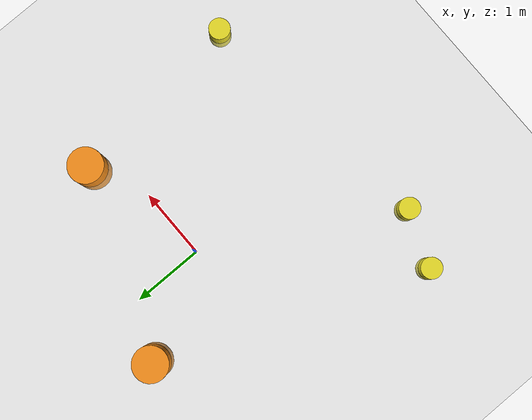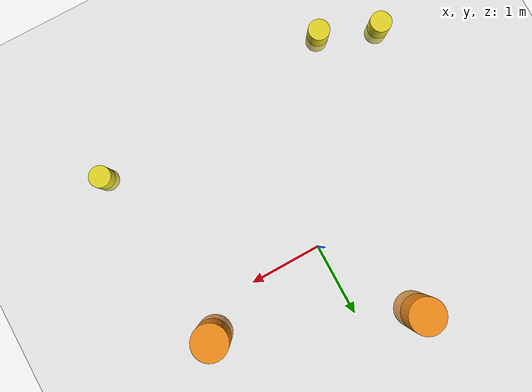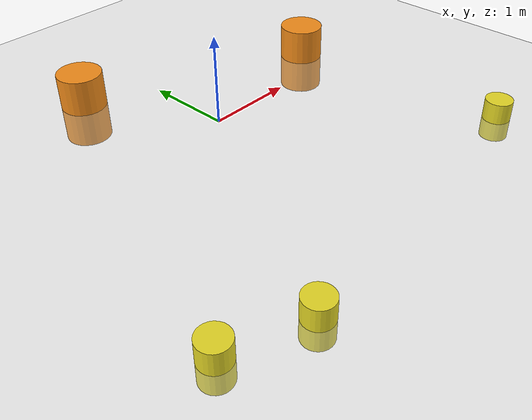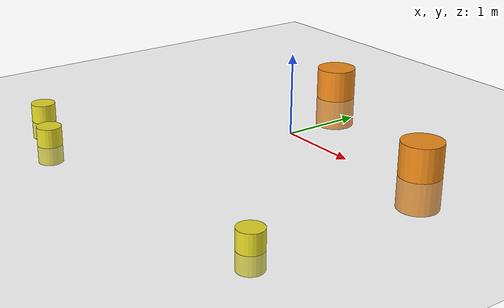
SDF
<?xml version="1.0" ?>
<sdf version="1.7">
  <world name="default">

    <!-- Global lighting -->
    <light name='sun' type='directional'>
      <cast_shadows>true</cast_shadows>
      <pose>0 0 10 0 0 0</pose>
      <diffuse>0.8 0.8 0.8 1</diffuse>
      <specular>0.2 0.2 0.2 1</specular>
      <attenuation>
        <range>1000</range>
        <constant>0.9</constant>
        <linear>0.01</linear>
        <quadratic>0.001</quadratic>
      </attenuation>
      <direction>-0.5 0.1 -0.9</direction>
    </light>

    <!-- Ground plane -->
    <model name='ground_plane'>
      <static>true</static>
      <link name='link'>
        <collision name='collision'>
          <geometry>
            <plane>
              <normal>0 0 1</normal>
              <size>100 100</size>
            </plane>
          </geometry>
          <surface>
            <friction>
              <ode>
                <mu>100</mu>
                <mu2>50</mu2>
              </ode>
            </friction>
          </surface>
        </collision>
        <visual name='visual'>
          <cast_shadows>false</cast_shadows>
          <geometry>
            <plane>
              <normal>0 0 1</normal>
              <size>100 100</size>
            </plane>
          </geometry>
          <material>
            <script>
              <uri>file://media/materials/scripts/gazebo.material</uri>
              <name>Gazebo/Grey</name>
            </script>
          </material>
        </visual>
      </link>
    </model>

    <!-- Construction Barrel 1 -->
    <model name='barrel_1'>
      <pose>-0.756 1.392 0 0 0 0</pose>
      <static>false</static>
      <link name='link'>
        <inertial>
          <mass>50</mass>
          <inertia>
            <ixx>5.12</ixx>
            <iyy>5.12</iyy>
            <izz>2.5</izz>
            <ixy>0</ixy>
            <ixz>0</ixz>
            <iyz>0</iyz>
          </inertia>
        </inertial>
        <collision name='collision'>
          <geometry>
            <cylinder>
              <radius>0.25</radius>
              <length>0.8</length>
            </cylinder>
          </geometry>
        </collision>
        <visual name='visual'>
          <geometry>
            <cylinder>
              <radius>0.25</radius>
              <length>0.8</length>
            </cylinder>
          </geometry>
          <material>
            <script>
              <uri>file://media/materials/scripts/gazebo.material</uri>
              <name>Gazebo/Orange</name>
            </script>
          </material>
        </visual>
      </link>
    </model>

    <!-- Construction Barrel 2 -->
    <model name='barrel_2'>
      <pose>1.800 0.377 0 0 0 0</pose>
      <static>false</static>
      <link name='link'>
        <inertial>
          <mass>50</mass>
          <inertia>
            <ixx>5.12</ixx>
            <iyy>5.12</iyy>
            <izz>2.5</izz>
            <ixy>0</ixy>
            <ixz>0</ixz>
            <iyz>0</iyz>
          </inertia>
        </inertial>
        <collision name='collision'>
          <geometry>
            <cylinder>
              <radius>0.25</radius>
              <length>0.8</length>
            </cylinder>
          </geometry>
        </collision>
        <visual name='visual'>
          <geometry>
            <cylinder>
              <radius>0.25</radius>
              <length>0.8</length>
            </cylinder>
          </geometry>
          <material>
            <script>
              <uri>file://media/materials/scripts/gazebo.material</uri>
              <name>Gazebo/Orange</name>
            </script>
          </material>
        </visual>
      </link>
    </model>

    <!-- Construction Cone 1 -->
    <model name='cone_1'>
      <pose>-2.197 -2.250 0 0 0 0</pose>
      <static>false</static>
      <link name='link'>
        <inertial>
          <mass>5</mass>
          <inertia>
            <ixx>0.5</ixx>
            <iyy>0.5</iyy>
            <izz>0.5</izz>
            <ixy>0</ixy>
            <ixz>0</ixz>
            <iyz>0</iyz>
          </inertia>
        </inertial>
        <collision name='collision'>
          <geometry>
            <cylinder>
              <radius>0.15</radius>
              <length>0.45</length>
            </cylinder>
          </geometry>
        </collision>
        <visual name='visual'>
          <geometry>
            <cylinder>
              <radius>0.15</radius>
              <length>0.45</length>
            </cylinder>
          </geometry>
          <material>
            <script>
              <uri>file://media/materials/scripts/gazebo.material</uri>
              <name>Gazebo/Yellow</name>
            </script>
          </material>
        </visual>
      </link>
    </model>

    <!-- Construction Cone 2 -->
    <model name='cone_2'>
      <pose>-1.405 -2.551 0 0 0 0</pose>
      <static>false</static>
      <link name='link'>
        <inertial>
          <mass>5</mass>
          <inertia>
            <ixx>0.5</ixx>
            <iyy>0.5</iyy>
            <izz>0.5</izz>
            <ixy>0</ixy>
            <ixz>0</ixz>
            <iyz>0</iyz>
          </inertia>
        </inertial>
        <collision name='collision'>
          <geometry>
            <cylinder>
              <radius>0.15</radius>
              <length>0.45</length>
            </cylinder>
          </geometry>
        </collision>
        <visual name='visual'>
          <geometry>
            <cylinder>
              <radius>0.15</radius>
              <length>0.45</length>
            </cylinder>
          </geometry>
          <material>
            <script>
              <uri>file://media/materials/scripts/gazebo.material</uri>
              <name>Gazebo/Yellow</name>
            </script>
          </material>
        </visual>
      </link>
    </model>

    <!-- Construction Cone 3 -->
    <model name='cone_3'>
      <pose>2.097 -2.182 0 0 0 0</pose>
      <static>false</static>
      <link name='link'>
        <inertial>
          <mass>5</mass>
          <inertia>
            <ixx>0.5</ixx>
            <iyy>0.5</iyy>
            <izz>0.5</izz>
            <ixy>0</ixy>
            <ixz>0</ixz>
            <iyz>0</iyz>
          </inertia>
        </inertial>
        <collision name='collision'>
          <geometry>
            <cylinder>
              <radius>0.15</radius>
              <length>0.45</length>
            </cylinder>
          </geometry>
        </collision>
        <visual name='visual'>
          <geometry>
            <cylinder>
              <radius>0.15</radius>
              <length>0.45</length>
            </cylinder>
          </geometry>
          <material>
            <script>
              <uri>file://media/materials/scripts/gazebo.material</uri>
              <name>Gazebo/Yellow</name>
            </script>
          </material>
        </visual>
      </link>
    </model>

    <!-- Physics settings -->
    <gravity>0 0 -9.8</gravity>
    <magnetic_field>6e-06 2.3e-05 -4.2e-05</magnetic_field>
    <atmosphere type='adiabatic'/>

    <physics type='ode'>
      <max_step_size>0.001</max_step_size>
      <real_time_factor>1</real_time_factor>
      <real_time_update_rate>1000</real_time_update_rate>
    </physics>

    <!-- Scene settings -->
    <scene>
      <ambient>0.4 0.4 0.4 1</ambient>
      <background>0.7 0.7 0.7 1</background>
      <shadows>true</shadows>
    </scene>

    <!-- ROS 2 Plugins for state and factory -->
    <plugin name="gazebo_ros_state" filename="libgazebo_ros_state.so">
      <ros>
        <namespace>/gazebo</namespace>
      </ros>
      <update_rate>10.0</update_rate>
    </plugin>

    <plugin name="gazebo_ros_factory" filename="libgazebo_ros_factory.so">
      <ros>
        <namespace>/gazebo</namespace>
      </ros>
    </plugin>

  </world>
</sdf>
